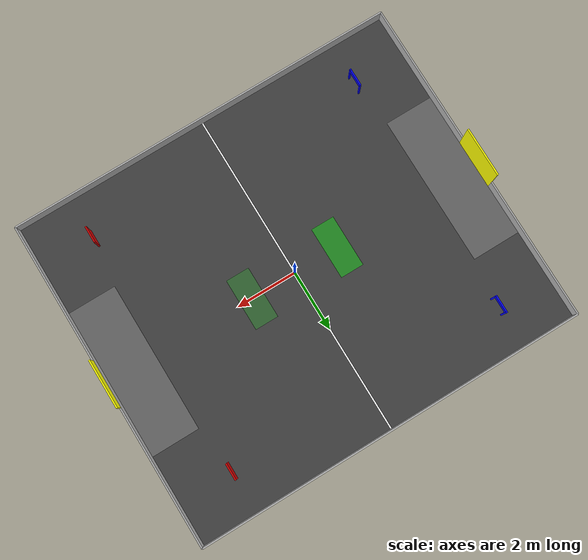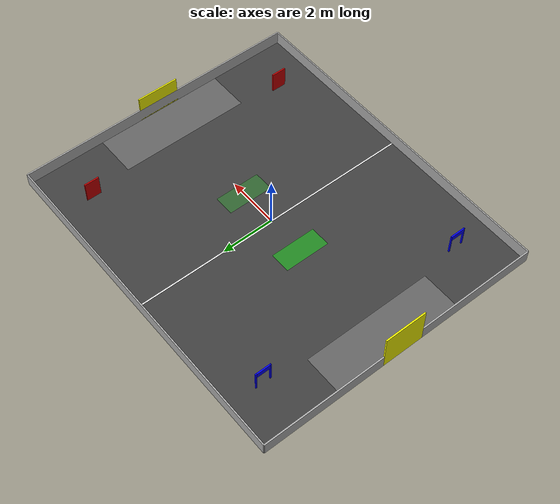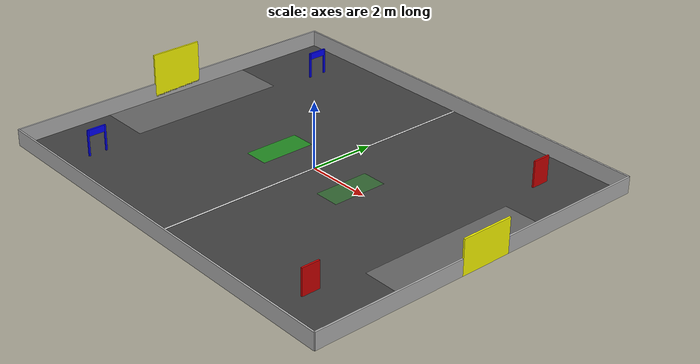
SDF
<?xml version="1.0" ?>
<sdf version="1.8">
  <world name="rox2026_field">
    <physics name="1ms" type="ignored">
      <max_step_size>0.001</max_step_size>
      <real_time_factor>1.0</real_time_factor>
    </physics>

    <plugin filename="gz-sim-physics-system" name="gz::sim::systems::Physics"/>
    <plugin filename="gz-sim-user-commands-system" name="gz::sim::systems::UserCommands"/>
    <plugin filename="gz-sim-scene-broadcaster-system" name="gz::sim::systems::SceneBroadcaster"/>
    <plugin filename="gz-sim-sensors-system" name="gz::sim::systems::Sensors"><render_engine>ogre2</render_engine></plugin>

    <light type="directional" name="sun">
      <cast_shadows>true</cast_shadows><pose>0 0 10 0 0 0</pose>
      <diffuse>0.8 0.8 0.8 1</diffuse><specular>0.2 0.2 0.2 1</specular>
      <direction>-0.5 0.1 -0.9</direction>
    </light>

    <!-- 1. Floor with Markings (X: 12.85m, Y: 10.9m) -->
    <model name="field_base">
      <static>true</static>
      <link name="link">
        <collision name="c_floor"><geometry><plane><normal>0 0 1</normal><size>12.85 10.9</size></plane></geometry>
          <surface><friction><ode><mu>0.6</mu><mu2>0.6</mu2></ode></friction></surface></collision>
        <visual name="v_floor"><geometry><plane><normal>0 0 1</normal><size>12.85 10.9</size></plane></geometry>
          <material><ambient>0.2 0.2 0.2 1</ambient><diffuse>0.25 0.25 0.25 1</diffuse></material></visual>

        <!-- Center Line (Vertical dividing Left/Right) -->
        <visual name="v_center_line"><pose>0 0 0.001 0 0 0</pose><geometry><box><size>0.05 10.9 0.001</size></box></geometry><material><ambient>1 1 1 1</ambient></material></visual>

        <!-- SIDE A (Left: X < 0) Pass Area: 0.768m(X) x 1.718m(Y) -->
        <visual name="v_pass_a"><pose>-1.5 0 0.001 0 0 0</pose><geometry><box><size>0.768 1.718 0.001</size></box></geometry><material><ambient>0 1 0 0.4</ambient><diffuse>0 1 0 0.4</diffuse></material></visual>
        <!-- SIDE B (Right: X > 0) Pass Area -->
        <visual name="v_pass_b"><pose>1.5 0 0.001 0 0 0</pose><geometry><box><size>0.768 1.718 0.001</size></box></geometry><material><ambient>0 1 0 0.2</ambient><diffuse>0 1 0 0.2</diffuse></material></visual>

        <!-- Penalty Areas -->
        <visual name="v_penalty_a"><pose>-5.625 0 0.001 0 0 0</pose><geometry><box><size>1.6 4.95 0.001</size></box></geometry><material><ambient>1 1 1 0.2</ambient></material></visual>
        <visual name="v_penalty_b"><pose>5.625 0 0.001 0 0 0</pose><geometry><box><size>1.6 4.95 0.001</size></box></geometry><material><ambient>1 1 1 0.2</ambient></material></visual>
      </link>
    </model>

    <!-- 2. Nutmeg Gates (4 total, Parallel to Y axis) -->
    <!-- Position X: +/- 4.6 (1.825 from side walls) | Position Y: +/- 4.025 (1.425 from top/bottom) -->

    <!-- Side A (Left) Top Gate -->
    <model name="gate_a_top"><static>true</static><pose>-4.6 4.025 0 0 0 0</pose><link name="l">
      <collision name="ca1_1"><pose>0 0.275 0.4 0 0 0</pose><geometry><box><size>0.05 0.05 0.8</size></box></geometry></collision>
      <visual name="va1_1"><pose>0 0.275 0.4 0 0 0</pose><geometry><box><size>0.05 0.05 0.8</size></box></geometry><material><ambient>0 0 1 1</ambient></material></visual>
      <collision name="ca1_2"><pose>0 -0.275 0.4 0 0 0</pose><geometry><box><size>0.05 0.05 0.8</size></box></geometry></collision>
      <visual name="va1_2"><pose>0 -0.275 0.4 0 0 0</pose><geometry><box><size>0.05 0.05 0.8</size></box></geometry><material><ambient>0 0 1 1</ambient></material></visual>
      <visual name="va1_3"><pose>0 0 0.7 0 0 0</pose><geometry><box><size>0.05 0.55 0.2</size></box></geometry><material><ambient>0 0 1 1</ambient></material></visual></link></model>

    <!-- Side A (Left) Bottom Gate -->
    <model name="gate_a_bottom"><static>true</static><pose>-4.6 -4.025 0 0 0 0</pose><link name="l">
      <collision name="ca2_1"><pose>0 0.275 0.4 0 0 0</pose><geometry><box><size>0.05 0.05 0.8</size></box></geometry></collision>
      <visual name="va2_1"><pose>0 0.275 0.4 0 0 0</pose><geometry><box><size>0.05 0.05 0.8</size></box></geometry><material><ambient>0 0 1 1</ambient></material></visual>
      <collision name="ca2_2"><pose>0 -0.275 0.4 0 0 0</pose><geometry><box><size>0.05 0.05 0.8</size></box></geometry></collision>
      <visual name="va2_2"><pose>0 -0.275 0.4 0 0 0</pose><geometry><box><size>0.05 0.05 0.8</size></box></geometry><material><ambient>0 0 1 1</ambient></material></visual>
      <visual name="va2_3"><pose>0 0 0.7 0 0 0</pose><geometry><box><size>0.05 0.55 0.2</size></box></geometry><material><ambient>0 0 1 1</ambient></material></visual></link></model>

    <!-- Side B (Right) Gates -->
    <model name="gate_b_top"><static>true</static><pose>4.6 4.025 0 0 0 0</pose><link name="l">
      <visual name="vb1_1"><pose>0 0 0.4 0 0 0</pose><geometry><box><size>0.05 0.55 0.8</size></box></geometry><material><ambient>0.8 0 0 1</ambient></material></visual></link></model>
    <model name="gate_b_bottom"><static>true</static><pose>4.6 -4.025 0 0 0 0</pose><link name="l">
      <visual name="vb2_1"><pose>0 0 0.4 0 0 0</pose><geometry><box><size>0.05 0.55 0.8</size></box></geometry><material><ambient>0.8 0 0 1</ambient></material></visual></link></model>

    <!-- 3. Goals (Side A on the Left, Side B on the Right) -->
    <model name="goal_left_a"><static>true</static><pose>-6.425 0 0.715 0 0 0</pose><link name="l">
      <collision name="cga"><geometry><box><size>0.05 1.6 1.43</size></box></geometry></collision>
      <visual name="vga"><geometry><box><size>0.05 1.6 1.43</size></box></geometry><material><ambient>1 1 0 1</ambient></material></visual></link></model>
    <model name="goal_right_b"><static>true</static><pose>6.425 0 0.525 0 0 0</pose><link name="l">
      <collision name="cgb"><geometry><box><size>0.05 1.6 1.05</size></box></geometry></collision>
      <visual name="vgb"><geometry><box><size>0.05 1.6 1.05</size></box></geometry><material><ambient>1 1 0 1</ambient></material></visual></link></model>

    <!-- 4. Boundary Walls -->
    <model name="field_walls"><static>true</static><link name="l">
      <collision name="cn"><pose>0 5.45 0.25 0 0 0</pose><geometry><box><size>12.85 0.05 0.5</size></box></geometry></collision>
      <visual name="vn"><pose>0 5.45 0.25 0 0 0</pose><geometry><box><size>12.85 0.05 0.5</size></box></geometry><material><ambient>0.7 0.7 0.7 1</ambient></material></visual>
      <collision name="cs"><pose>0 -5.45 0.25 0 0 0</pose><geometry><box><size>12.85 0.05 0.5</size></box></geometry></collision>
      <visual name="vs"><pose>0 -5.45 0.25 0 0 0</pose><geometry><box><size>12.85 0.05 0.5</size></box></geometry><material><ambient>0.7 0.7 0.7 1</ambient></material></visual>
      <collision name="ce"><pose>6.425 0 0.25 0 0 0</pose><geometry><box><size>0.05 10.9 0.5</size></box></geometry></collision>
      <visual name="ve"><pose>6.425 0 0.25 0 0 0</pose><geometry><box><size>0.05 10.9 0.5</size></box></geometry><material><ambient>0.7 0.7 0.7 1</ambient></material></visual>
      <collision name="cw"><pose>-6.425 0 0.25 0 0 0</pose><geometry><box><size>0.05 10.9 0.5</size></box></geometry></collision>
      <visual name="vw"><pose>-6.425 0 0.25 0 0 0</pose><geometry><box><size>0.05 10.9 0.5</size></box></geometry><material><ambient>0.7 0.7 0.7 1</ambient></material></visual></link></model>

  </world>
</sdf>
